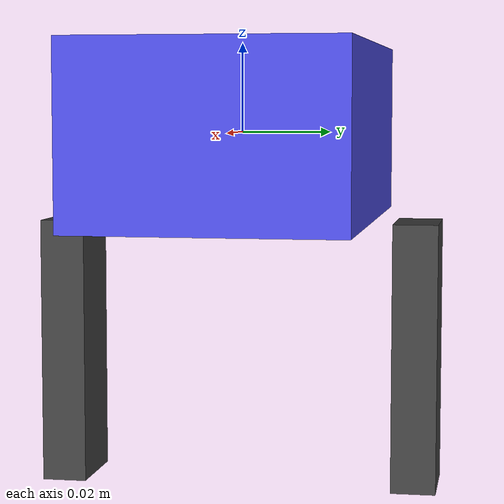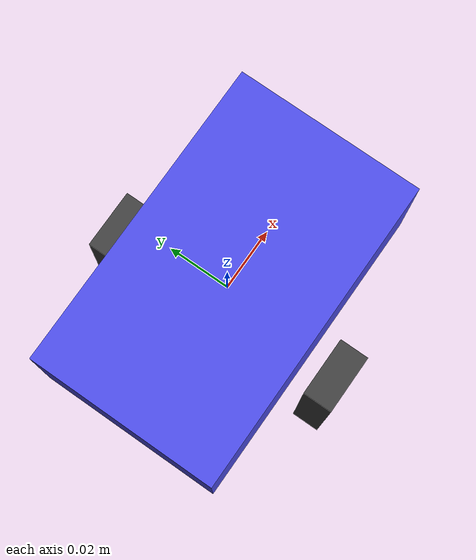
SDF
<?xml version="1.0"?>
<sdf version="1.10">
  <model name="parallel_jaw_gripper">
    <pose>0 0 0 0 0 0</pose>

    <link name="palm">
      <gravity>false</gravity>
      <inertial>
        <mass>0.5</mass>
        <inertia><ixx>1e-3</ixx><iyy>1e-3</iyy><izz>1e-3</izz>
                 <ixy>0</ixy><ixz>0</ixz><iyz>0</iyz></inertia>
      </inertial>
      <collision name="c">
        <geometry><box><size>0.10 0.06 0.04</size></box></geometry>
      </collision>
      <visual name="v">
        <geometry><box><size>0.10 0.06 0.04</size></box></geometry>
        <material><ambient>0.20 0.20 0.70 1</ambient><diffuse>0.30 0.30 0.90 1</diffuse></material>
      </visual>
    </link>

    <link name="left_finger">
      <gravity>false</gravity>
      <pose>0 0.040 -0.05 0 0 0</pose>
      <inertial>
        <mass>0.05</mass>
        <inertia><ixx>1e-5</ixx><iyy>1e-5</iyy><izz>1e-5</izz>
                 <ixy>0</ixy><ixz>0</ixz><iyz>0</iyz></inertia>
      </inertial>
      <collision name="c">
        <geometry><box><size>0.02 0.01 0.06</size></box></geometry>
      </collision>
      <visual name="v">
        <geometry><box><size>0.02 0.01 0.06</size></box></geometry>
        <material><ambient>0.10 0.10 0.10 1</ambient><diffuse>0.25 0.25 0.25 1</diffuse></material>
      </visual>
    </link>

    <link name="right_finger">
      <gravity>false</gravity>
      <pose>0 -0.040 -0.05 0 0 0</pose>
      <inertial>
        <mass>0.05</mass>
        <inertia><ixx>1e-5</ixx><iyy>1e-5</iyy><izz>1e-5</izz>
                 <ixy>0</ixy><ixz>0</ixz><iyz>0</iyz></inertia>
      </inertial>
      <collision name="c">
        <geometry><box><size>0.02 0.01 0.06</size></box></geometry>
      </collision>
      <visual name="v">
        <geometry><box><size>0.02 0.01 0.06</size></box></geometry>
        <material><ambient>0.10 0.10 0.10 1</ambient><diffuse>0.25 0.25 0.25 1</diffuse></material>
      </visual>
    </link>

    <joint name="left_finger_joint" type="prismatic">
      <parent>palm</parent>
      <child>left_finger</child>
      <axis>
        <xyz>0 1 0</xyz>
        <limit><lower>0.0</lower><upper>0.05</upper><effort>50</effort><velocity>0.5</velocity></limit>
        <dynamics><damping>5.0</damping></dynamics>
      </axis>
    </joint>

    <joint name="right_finger_joint" type="prismatic">
      <parent>palm</parent>
      <child>right_finger</child>
      <axis>
        <xyz>0 -1 0</xyz>
        <limit><lower>0.0</lower><upper>0.05</upper><effort>50</effort><velocity>0.5</velocity></limit>
        <dynamics><damping>5.0</damping></dynamics>
      </axis>
    </joint>

    <plugin filename="gz-sim-joint-position-controller-system"
            name="gz::sim::systems::JointPositionController">
      <joint_name>left_finger_joint</joint_name>
      <topic>/gripper/left_finger_cmd</topic>
      <p_gain>200</p_gain>
      <i_gain>0</i_gain>
      <d_gain>20</d_gain>
    </plugin>

    <plugin filename="gz-sim-joint-position-controller-system"
            name="gz::sim::systems::JointPositionController">
      <joint_name>right_finger_joint</joint_name>
      <topic>/gripper/right_finger_cmd</topic>
      <p_gain>200</p_gain>
      <i_gain>0</i_gain>
      <d_gain>20</d_gain>
    </plugin>
  </model>
</sdf>
